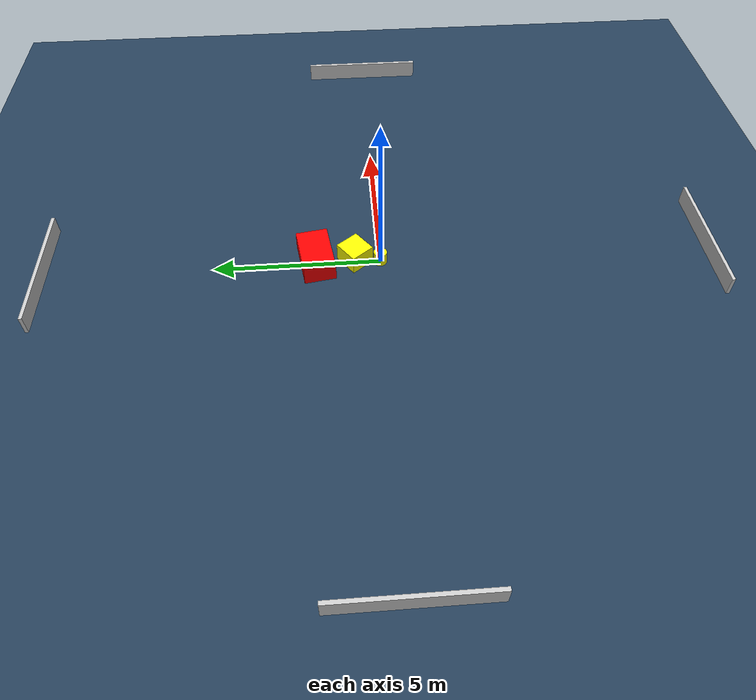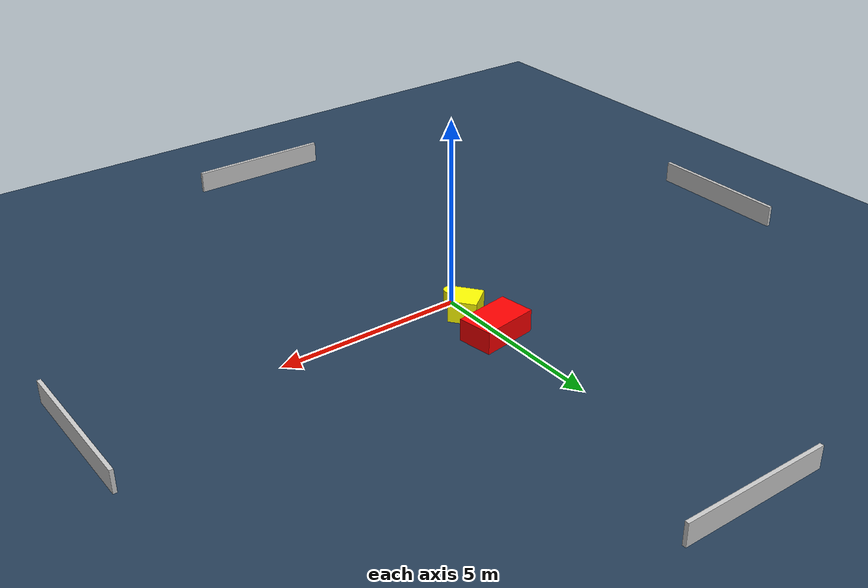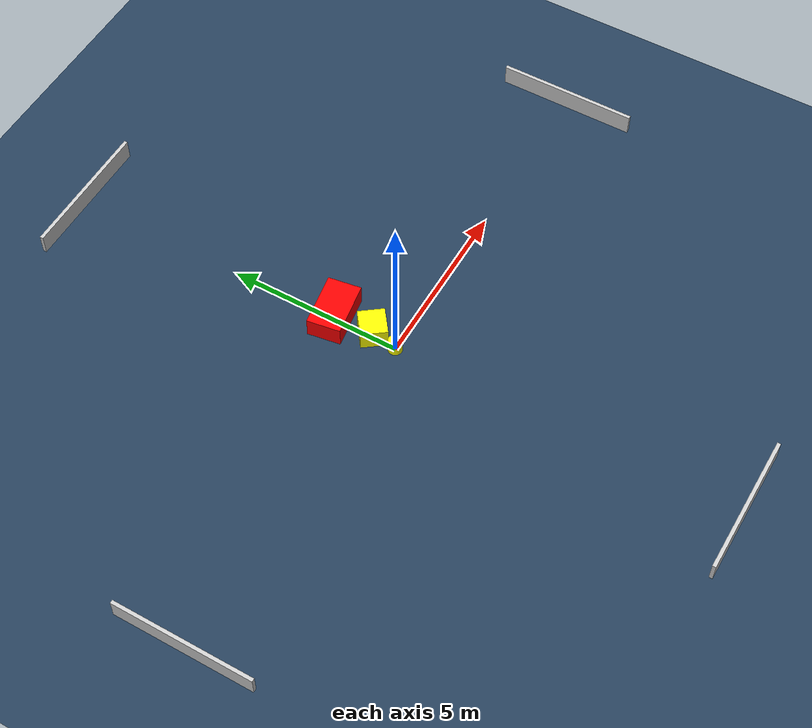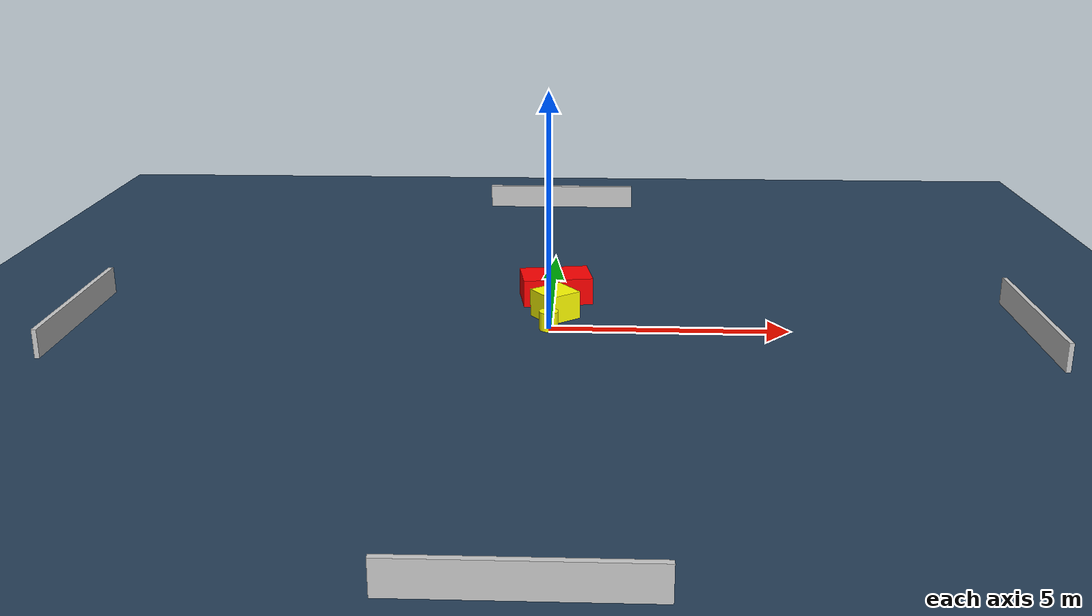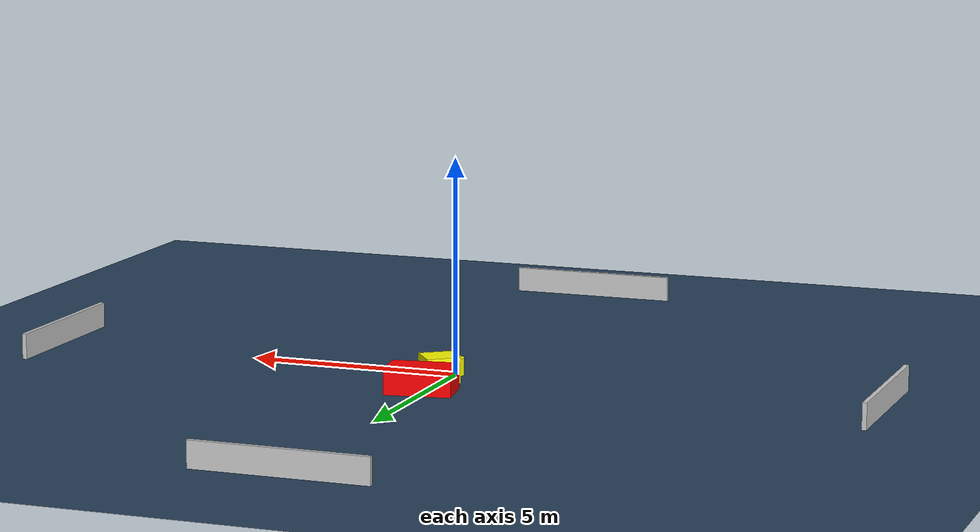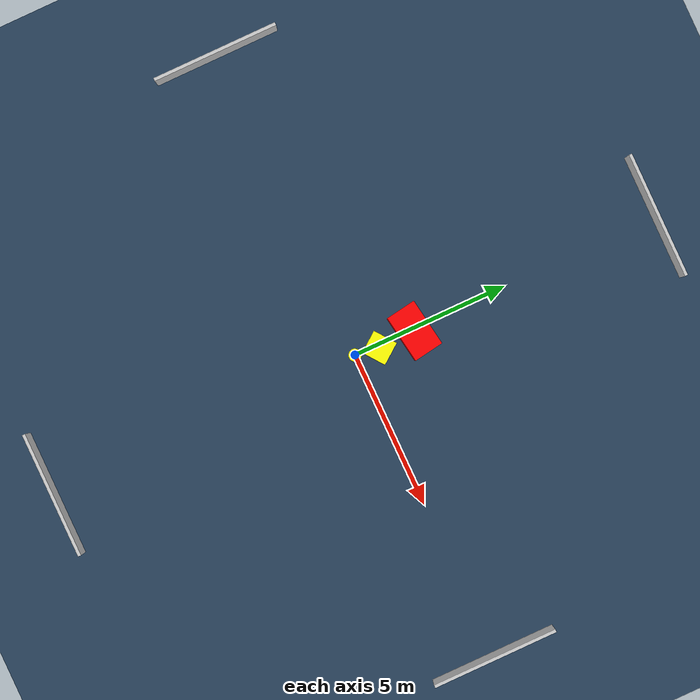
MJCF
<?xml version="1.0" ?>
<mujoco model="generated_environment">
  <option timestep="0.01" integrator="RK4" cone="elliptic"/>
  <default>
    <geom density="1"/>
  </default>
  <asset>
    <texture builtin="gradient" height="3072" name="skybox" rgb1="0.3 0.5 0.7" rgb2="0 0 0" type="skybox" width="512"/>
    <texture builtin="checker" height="300" name="groundplane" rgb1="0.2 0.3 0.4" rgb2="0.1 0.2 0.3" type="2d" width="300"/>
    <material name="groundplane" reflectance="0.2" texrepeat="5 5" texture="groundplane"/>
  </asset>
  <worldbody>
    <light dir="0 0 -1" directional="true" pos="0 0 1.5"/>
    <geom condim="3" friction="0.5 0.005 0.001" material="groundplane" name="floor" pos="0 0 0" size="0 0 0.05" type="plane"/>
    <body name="walls">
      <geom name="wall_1" condim="4" pos="-10.0 0.0 0.3" rgba="0.800000011920929 0.800000011920929 0.800000011920929 1.0" size="0.05 2.0 0.3" type="box"/>
      <geom name="wall_2" condim="4" pos="10.0 0.0 0.3" rgba="0.800000011920929 0.800000011920929 0.800000011920929 1.0" size="0.05 2.0 0.3" type="box"/>
      <geom name="wall_3" condim="4" pos="0.0 -10.0 0.3" rgba="0.800000011920929 0.800000011920929 0.800000011920929 1.0" size="2.0 0.05 0.3" type="box"/>
      <geom name="wall_4" condim="4" pos="0.0 10.0 0.3" rgba="0.800000011920929 0.800000011920929 0.800000011920929 1.0" size="2.0 0.05 0.3" type="box"/>
    </body>
    <body name="robot">
      <joint name="joint_x" type="slide" pos="0 0 0" axis="1 0 0"/>
      <joint name="joint_y" type="slide" pos="0 0 0" axis="0 1 0"/>
      <geom name="robot" type="cylinder" pos="0.0 0.0 0.2" size="0.2 0.2 0.0" mass="5.0" friction="1.0 0.005 0.0001" condim="4" rgba="1.0 1.0 0.0 1.0"/>
    </body>
    <body name="obstacle_1_movable">
      <geom name="obstacle_1_movable" condim="4" pos="0.10922539686260427 0.7567605129871647 0.3" euler="0 0 127.09781611494002" friction="0.0 0.005 0.001" rgba="1.0 1.0 0.0 1.0" size="0.3749572782793638 0.3877123387790625 0.3" type="box" mass="0.1"/>
      <joint type="free"/>
    </body>
    <body name="obstacle_2_static">
      <geom name="obstacle_2_static" condim="4" pos="0.08751196270759226 1.9277999211124794 0.3" euler="0 0 8.843382039122476" friction="0.0 0.005 0.001" rgba="1.0 0.0 0.0 1.0" size="0.7643611724397905 0.4758533244535012 0.3" type="box"/>
    </body>
  </worldbody>
  <actuator>
    <motor name="actuator_x" joint="joint_x" gear="1" ctrlrange="-1 1"/>
    <motor name="actuator_y" joint="joint_y" gear="1" ctrlrange="-1 1"/>
  </actuator>
</mujoco>
